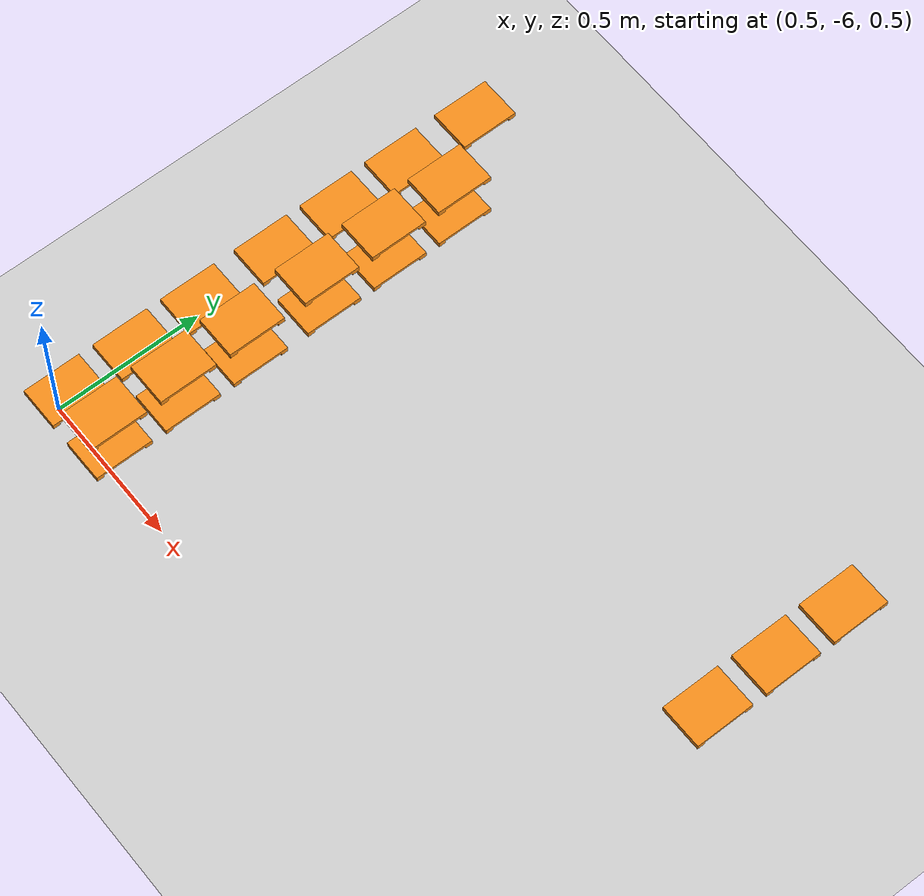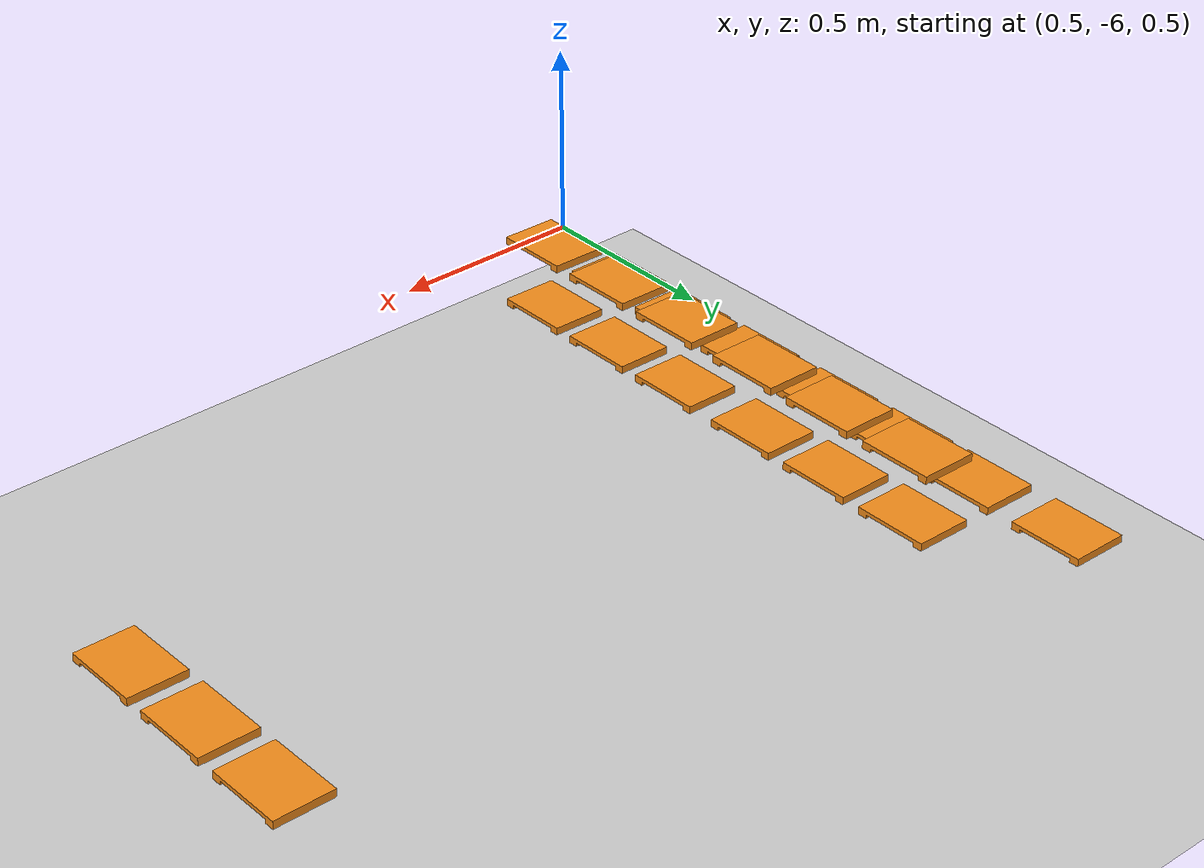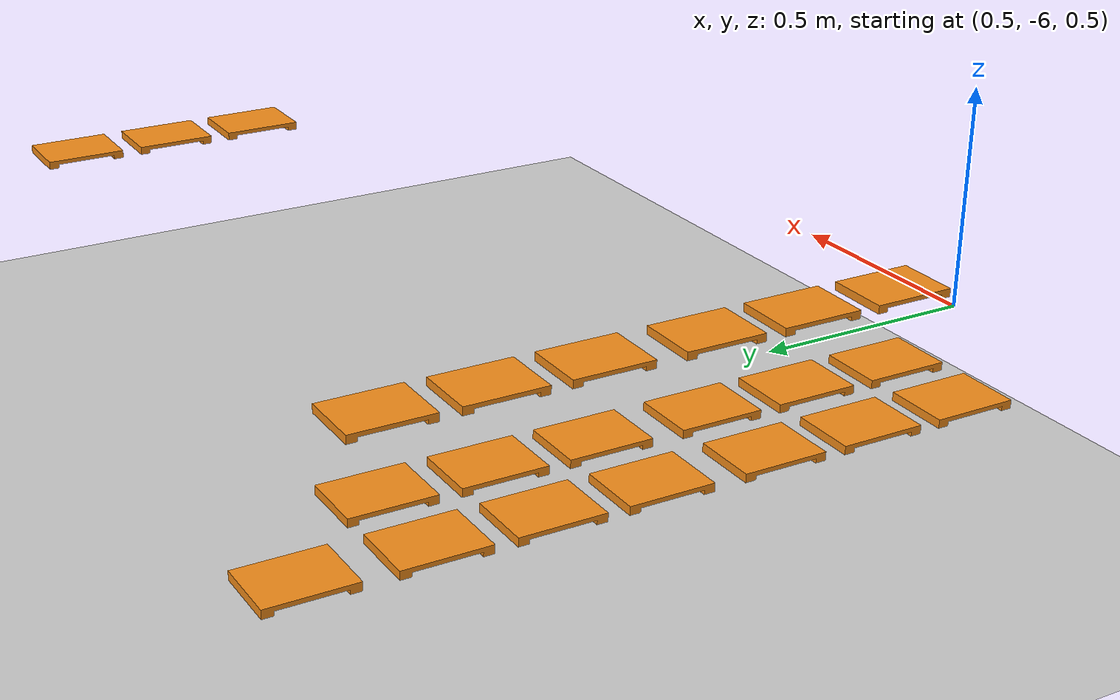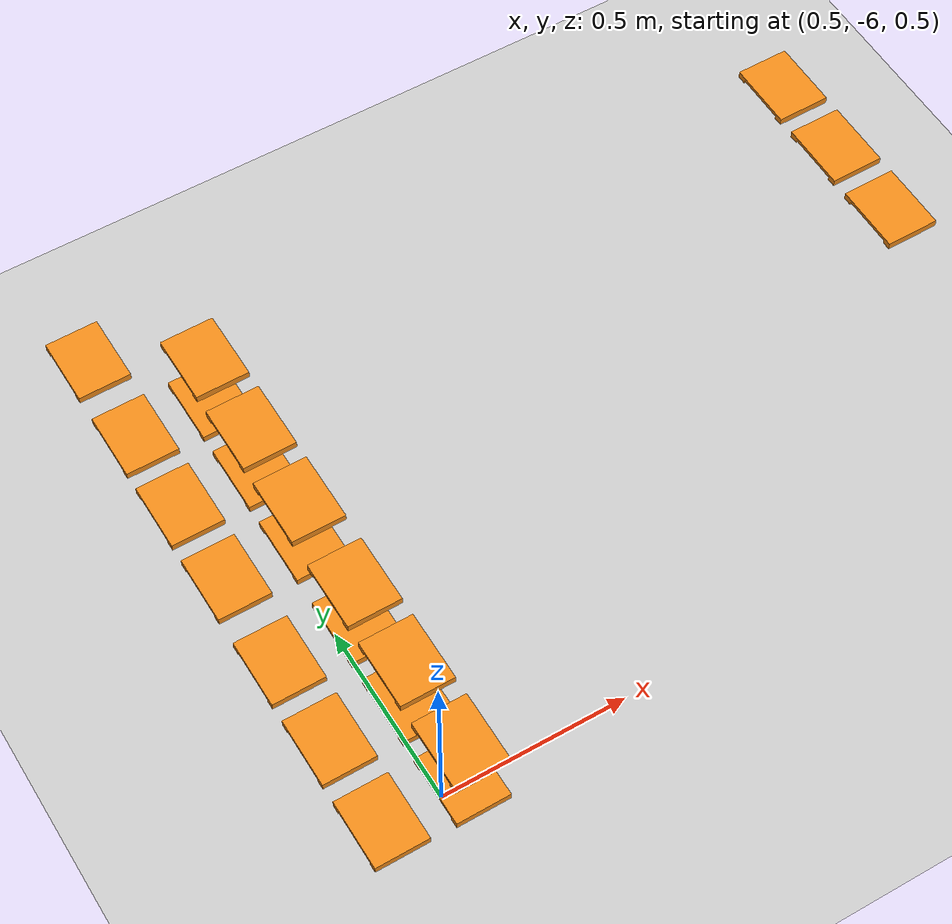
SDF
<sdf version="1.7">
 <world name="default">
  <model name="ground_plane">
   <static>1</static>
   <link name="link">
    <collision name="collision">
     <geometry><plane><normal>0 0 1</normal><size>100 100</size></plane></geometry>
     <surface>
      <contact><collide_bitmask>65535</collide_bitmask></contact>
      <friction><ode><mu>1</mu><mu2>1</mu2></ode></friction>
     </surface>
    </collision>
    <visual name="visual">
     <cast_shadows>0</cast_shadows>
     <geometry><plane><normal>0 0 1</normal><size>100 100</size></plane></geometry>
     <material>
      <script><uri>file://media/materials/scripts/gazebo.material</uri><name>Gazebo/Grey</name></script>
     </material>
    </visual>
   </link>
  </model>
  <model name="pallet_175">
   <pose>0.603691 -4.887 0.511037 2.7e-05 -0.012318 -1.2e-05</pose>
   <link name="link">
    <inertial>
     <pose>0 0 0 0 -0 1.571</pose>
     <inertia>
      <ixx>0.00220983</ixx>
      <ixy>0</ixy>
      <ixz>0</ixz>
      <iyy>0.00128087</iyy>
      <iyz>0</iyz>
      <izz>0.00244903</izz>
     </inertia>
     <mass>0.01</mass>
    </inertial>
    <visual name="visual1">
     <cast_shadows>0</cast_shadows>
     <geometry><mesh><uri>model://pallet/meshes/pallet.stl</uri></mesh></geometry>
     <material>
      <script><uri>file://media/materials/scripts/gazebo.material</uri><name>Gazebo/Orange</name></script>
      <shader type="pixel"><normal_map>__default__</normal_map></shader>
      <emissive>0 0 0 1</emissive>
     </material>
     <pose>0 0 -0 0 -0 1.571</pose>
    </visual>
    <collision name="collision_0">
     <pose>0 0 0 0 -0 1.571</pose>
     <geometry><mesh><uri>model://pallet/meshes/pallet.stl</uri></mesh></geometry>
     <surface>
      <friction>
       <ode><mu>1</mu><mu2>1</mu2><fdir1>0 0 0</fdir1><slip1>0</slip1><slip2>0</slip2></ode>
       <torsional>
        <coefficient>1</coefficient>
        <patch_radius>0</patch_radius>
        <surface_radius>0</surface_radius>
        <use_patch_radius>1</use_patch_radius>
        <ode><slip>0</slip></ode>
       </torsional>
      </friction>
      <bounce><restitution_coefficient>0</restitution_coefficient><threshold>1e+06</threshold></bounce>
      <contact>
       <collide_without_contact>0</collide_without_contact>
       <collide_without_contact_bitmask>1</collide_without_contact_bitmask>
       <collide_bitmask>1</collide_bitmask>
       <ode>
        <soft_cfm>0</soft_cfm>
        <soft_erp>0.2</soft_erp>
        <kp>1e+13</kp>
        <kd>1</kd>
        <max_vel>0.01</max_vel>
        <min_depth>0</min_depth>
       </ode>
       <bullet>
        <split_impulse>1</split_impulse>
        <split_impulse_penetration_threshold>-0.01</split_impulse_penetration_threshold>
        <soft_cfm>0</soft_cfm>
        <soft_erp>0.2</soft_erp>
        <kp>1e+13</kp>
        <kd>1</kd>
       </bullet>
      </contact>
     </surface>
    </collision>
   </link>
   <static>0</static>
  </model>
  <model name="pallet_176">
   <pose>0.603689 -4.637 0.511039 7e-06 -0.012316 1.4e-05</pose>
   <link name="link">
    <inertial>
     <pose>0 0 0 0 -0 1.571</pose>
     <inertia>
      <ixx>0.00220983</ixx>
      <ixy>0</ixy>
      <ixz>0</ixz>
      <iyy>0.00128087</iyy>
      <iyz>0</iyz>
      <izz>0.00244903</izz>
     </inertia>
     <mass>0.01</mass>
    </inertial>
    <visual name="visual1">
     <cast_shadows>0</cast_shadows>
     <geometry><mesh><uri>model://pallet/meshes/pallet.stl</uri></mesh></geometry>
     <material>
      <script><uri>file://media/materials/scripts/gazebo.material</uri><name>Gazebo/Orange</name></script>
      <shader type="pixel"><normal_map>__default__</normal_map></shader>
      <emissive>0 0 0 1</emissive>
     </material>
     <pose>0 0 -0 0 -0 1.571</pose>
    </visual>
    <collision name="collision_0">
     <pose>0 0 0 0 -0 1.571</pose>
     <geometry><mesh><uri>model://pallet/meshes/pallet.stl</uri></mesh></geometry>
     <surface>
      <friction>
       <ode><mu>1</mu><mu2>1</mu2><fdir1>0 0 0</fdir1><slip1>0</slip1><slip2>0</slip2></ode>
       <torsional>
        <coefficient>1</coefficient>
        <patch_radius>0</patch_radius>
        <surface_radius>0</surface_radius>
        <use_patch_radius>1</use_patch_radius>
        <ode><slip>0</slip></ode>
       </torsional>
      </friction>
      <bounce><restitution_coefficient>0</restitution_coefficient><threshold>1e+06</threshold></bounce>
      <contact>
       <collide_without_contact>0</collide_without_contact>
       <collide_without_contact_bitmask>1</collide_without_contact_bitmask>
       <collide_bitmask>1</collide_bitmask>
       <ode>
        <soft_cfm>0</soft_cfm>
        <soft_erp>0.2</soft_erp>
        <kp>1e+13</kp>
        <kd>1</kd>
        <max_vel>0.01</max_vel>
        <min_depth>0</min_depth>
       </ode>
       <bullet>
        <split_impulse>1</split_impulse>
        <split_impulse_penetration_threshold>-0.01</split_impulse_penetration_threshold>
        <soft_cfm>0</soft_cfm>
        <soft_erp>0.2</soft_erp>
        <kp>1e+13</kp>
        <kd>1</kd>
       </bullet>
      </contact>
     </surface>
    </collision>
   </link>
   <static>0</static>
  </model>
  <model name="pallet_177">
   <pose>0.603694 -5.137 0.511037 2.4e-05 -0.012318 3e-06</pose>
   <link name="link">
    <inertial>
     <pose>0 0 0 0 -0 1.571</pose>
     <inertia>
      <ixx>0.00220983</ixx>
      <ixy>0</ixy>
      <ixz>0</ixz>
      <iyy>0.00128087</iyy>
      <iyz>0</iyz>
      <izz>0.00244903</izz>
     </inertia>
     <mass>0.01</mass>
    </inertial>
    <visual name="visual1">
     <cast_shadows>0</cast_shadows>
     <geometry><mesh><uri>model://pallet/meshes/pallet.stl</uri></mesh></geometry>
     <material>
      <script><uri>file://media/materials/scripts/gazebo.material</uri><name>Gazebo/Orange</name></script>
      <shader type="pixel"><normal_map>__default__</normal_map></shader>
      <emissive>0 0 0 1</emissive>
     </material>
     <pose>0 0 -0 0 -0 1.571</pose>
    </visual>
    <collision name="collision_0">
     <pose>0 0 0 0 -0 1.571</pose>
     <geometry><mesh><uri>model://pallet/meshes/pallet.stl</uri></mesh></geometry>
     <surface>
      <friction>
       <ode><mu>1</mu><mu2>1</mu2><fdir1>0 0 0</fdir1><slip1>0</slip1><slip2>0</slip2></ode>
       <torsional>
        <coefficient>1</coefficient>
        <patch_radius>0</patch_radius>
        <surface_radius>0</surface_radius>
        <use_patch_radius>1</use_patch_radius>
        <ode><slip>0</slip></ode>
       </torsional>
      </friction>
      <bounce><restitution_coefficient>0</restitution_coefficient><threshold>1e+06</threshold></bounce>
      <contact>
       <collide_without_contact>0</collide_without_contact>
       <collide_without_contact_bitmask>1</collide_without_contact_bitmask>
       <collide_bitmask>1</collide_bitmask>
       <ode>
        <soft_cfm>0</soft_cfm>
        <soft_erp>0.2</soft_erp>
        <kp>1e+13</kp>
        <kd>1</kd>
        <max_vel>0.01</max_vel>
        <min_depth>0</min_depth>
       </ode>
       <bullet>
        <split_impulse>1</split_impulse>
        <split_impulse_penetration_threshold>-0.01</split_impulse_penetration_threshold>
        <soft_cfm>0</soft_cfm>
        <soft_erp>0.2</soft_erp>
        <kp>1e+13</kp>
        <kd>1</kd>
       </bullet>
      </contact>
     </surface>
    </collision>
   </link>
   <static>0</static>
  </model>
  <model name="pallet_178">
   <pose>0.603698 -5.6625 0.511036 2.3e-05 -0.012318 -1.3e-05</pose>
   <link name="link">
    <inertial>
     <pose>0 0 0 0 -0 1.571</pose>
     <inertia>
      <ixx>0.00220983</ixx>
      <ixy>0</ixy>
      <ixz>0</ixz>
      <iyy>0.00128087</iyy>
      <iyz>0</iyz>
      <izz>0.00244903</izz>
     </inertia>
     <mass>0.01</mass>
    </inertial>
    <visual name="visual1">
     <cast_shadows>0</cast_shadows>
     <geometry><mesh><uri>model://pallet/meshes/pallet.stl</uri></mesh></geometry>
     <material>
      <script><uri>file://media/materials/scripts/gazebo.material</uri><name>Gazebo/Orange</name></script>
      <shader type="pixel"><normal_map>__default__</normal_map></shader>
      <emissive>0 0 0 1</emissive>
     </material>
     <pose>0 0 -0 0 -0 1.571</pose>
    </visual>
    <collision name="collision_0">
     <pose>0 0 0 0 -0 1.571</pose>
     <geometry><mesh><uri>model://pallet/meshes/pallet.stl</uri></mesh></geometry>
     <surface>
      <friction>
       <ode><mu>1</mu><mu2>1</mu2><fdir1>0 0 0</fdir1><slip1>0</slip1><slip2>0</slip2></ode>
       <torsional>
        <coefficient>1</coefficient>
        <patch_radius>0</patch_radius>
        <surface_radius>0</surface_radius>
        <use_patch_radius>1</use_patch_radius>
        <ode><slip>0</slip></ode>
       </torsional>
      </friction>
      <bounce><restitution_coefficient>0</restitution_coefficient><threshold>1e+06</threshold></bounce>
      <contact>
       <collide_without_contact>0</collide_without_contact>
       <collide_without_contact_bitmask>1</collide_without_contact_bitmask>
       <collide_bitmask>1</collide_bitmask>
       <ode>
        <soft_cfm>0</soft_cfm>
        <soft_erp>0.2</soft_erp>
        <kp>1e+13</kp>
        <kd>1</kd>
        <max_vel>0.01</max_vel>
        <min_depth>0</min_depth>
       </ode>
       <bullet>
        <split_impulse>1</split_impulse>
        <split_impulse_penetration_threshold>-0.01</split_impulse_penetration_threshold>
        <soft_cfm>0</soft_cfm>
        <soft_erp>0.2</soft_erp>
        <kp>1e+13</kp>
        <kd>1</kd>
       </bullet>
      </contact>
     </surface>
    </collision>
   </link>
   <static>0</static>
  </model>
  <model name="pallet_179">
   <pose>0.603697 -5.4125 0.511037 1e-05 -0.012318 2.3e-05</pose>
   <link name="link">
    <inertial>
     <pose>0 0 0 0 -0 1.571</pose>
     <inertia>
      <ixx>0.00220983</ixx>
      <ixy>0</ixy>
      <ixz>0</ixz>
      <iyy>0.00128087</iyy>
      <iyz>0</iyz>
      <izz>0.00244903</izz>
     </inertia>
     <mass>0.01</mass>
    </inertial>
    <visual name="visual1">
     <cast_shadows>0</cast_shadows>
     <geometry><mesh><uri>model://pallet/meshes/pallet.stl</uri></mesh></geometry>
     <material>
      <script><uri>file://media/materials/scripts/gazebo.material</uri><name>Gazebo/Orange</name></script>
      <shader type="pixel"><normal_map>__default__</normal_map></shader>
      <emissive>0 0 0 1</emissive>
     </material>
     <pose>0 0 -0 0 -0 1.571</pose>
    </visual>
    <collision name="collision_0">
     <pose>0 0 0 0 -0 1.571</pose>
     <geometry><mesh><uri>model://pallet/meshes/pallet.stl</uri></mesh></geometry>
     <surface>
      <friction>
       <ode><mu>1</mu><mu2>1</mu2><fdir1>0 0 0</fdir1><slip1>0</slip1><slip2>0</slip2></ode>
       <torsional>
        <coefficient>1</coefficient>
        <patch_radius>0</patch_radius>
        <surface_radius>0</surface_radius>
        <use_patch_radius>1</use_patch_radius>
        <ode><slip>0</slip></ode>
       </torsional>
      </friction>
      <bounce><restitution_coefficient>0</restitution_coefficient><threshold>1e+06</threshold></bounce>
      <contact>
       <collide_without_contact>0</collide_without_contact>
       <collide_without_contact_bitmask>1</collide_without_contact_bitmask>
       <collide_bitmask>1</collide_bitmask>
       <ode>
        <soft_cfm>0</soft_cfm>
        <soft_erp>0.2</soft_erp>
        <kp>1e+13</kp>
        <kd>1</kd>
        <max_vel>0.01</max_vel>
        <min_depth>0</min_depth>
       </ode>
       <bullet>
        <split_impulse>1</split_impulse>
        <split_impulse_penetration_threshold>-0.01</split_impulse_penetration_threshold>
        <soft_cfm>0</soft_cfm>
        <soft_erp>0.2</soft_erp>
        <kp>1e+13</kp>
        <kd>1</kd>
       </bullet>
      </contact>
     </surface>
    </collision>
   </link>
   <static>0</static>
  </model>
  <model name="pallet_180">
   <pose>0.603701 -5.9125 0.511037 4e-06 -0.012323 4e-06</pose>
   <link name="link">
    <inertial>
     <pose>0 0 0 0 -0 1.571</pose>
     <inertia>
      <ixx>0.00220983</ixx>
      <ixy>0</ixy>
      <ixz>0</ixz>
      <iyy>0.00128087</iyy>
      <iyz>0</iyz>
      <izz>0.00244903</izz>
     </inertia>
     <mass>0.01</mass>
    </inertial>
    <visual name="visual1">
     <cast_shadows>0</cast_shadows>
     <geometry><mesh><uri>model://pallet/meshes/pallet.stl</uri></mesh></geometry>
     <material>
      <script><uri>file://media/materials/scripts/gazebo.material</uri><name>Gazebo/Orange</name></script>
      <shader type="pixel"><normal_map>__default__</normal_map></shader>
      <emissive>0 0 0 1</emissive>
     </material>
     <pose>0 0 -0 0 -0 1.571</pose>
    </visual>
    <collision name="collision_0">
     <pose>0 0 0 0 -0 1.571</pose>
     <geometry><mesh><uri>model://pallet/meshes/pallet.stl</uri></mesh></geometry>
     <surface>
      <friction>
       <ode><mu>1</mu><mu2>1</mu2><fdir1>0 0 0</fdir1><slip1>0</slip1><slip2>0</slip2></ode>
       <torsional>
        <coefficient>1</coefficient>
        <patch_radius>0</patch_radius>
        <surface_radius>0</surface_radius>
        <use_patch_radius>1</use_patch_radius>
        <ode><slip>0</slip></ode>
       </torsional>
      </friction>
      <bounce><restitution_coefficient>0</restitution_coefficient><threshold>1e+06</threshold></bounce>
      <contact>
       <collide_without_contact>0</collide_without_contact>
       <collide_without_contact_bitmask>1</collide_without_contact_bitmask>
       <collide_bitmask>1</collide_bitmask>
       <ode>
        <soft_cfm>0</soft_cfm>
        <soft_erp>0.2</soft_erp>
        <kp>1e+13</kp>
        <kd>1</kd>
        <max_vel>0.01</max_vel>
        <min_depth>0</min_depth>
       </ode>
       <bullet>
        <split_impulse>1</split_impulse>
        <split_impulse_penetration_threshold>-0.01</split_impulse_penetration_threshold>
        <soft_cfm>0</soft_cfm>
        <soft_erp>0.2</soft_erp>
        <kp>1e+13</kp>
        <kd>1</kd>
       </bullet>
      </contact>
     </surface>
    </collision>
   </link>
   <static>0</static>
  </model>
  <model name="pallet_198">
   <pose>0.385751 -4.3625 0.33101 2.9e-05 -0.012781 8e-06</pose>
   <link name="link">
    <inertial>
     <pose>0 0 0 0 -0 1.571</pose>
     <inertia>
      <ixx>0.00220983</ixx>
      <ixy>0</ixy>
      <ixz>0</ixz>
      <iyy>0.00128087</iyy>
      <iyz>0</iyz>
      <izz>0.00244903</izz>
     </inertia>
     <mass>0.01</mass>
    </inertial>
    <visual name="visual1">
     <cast_shadows>0</cast_shadows>
     <geometry><mesh><uri>model://pallet/meshes/pallet.stl</uri></mesh></geometry>
     <material>
      <script><uri>file://media/materials/scripts/gazebo.material</uri><name>Gazebo/Orange</name></script>
      <shader type="pixel"><normal_map>__default__</normal_map></shader>
      <emissive>0 0 0 1</emissive>
     </material>
     <pose>0 0 -0 0 -0 1.571</pose>
    </visual>
    <collision name="collision_0">
     <pose>0 0 0 0 -0 1.571</pose>
     <geometry><mesh><uri>model://pallet/meshes/pallet.stl</uri></mesh></geometry>
     <surface>
      <friction>
       <ode><mu>1</mu><mu2>1</mu2><fdir1>0 0 0</fdir1><slip1>0</slip1><slip2>0</slip2></ode>
       <torsional>
        <coefficient>1</coefficient>
        <patch_radius>0</patch_radius>
        <surface_radius>0</surface_radius>
        <use_patch_radius>1</use_patch_radius>
        <ode><slip>0</slip></ode>
       </torsional>
      </friction>
      <bounce><restitution_coefficient>0</restitution_coefficient><threshold>1e+06</threshold></bounce>
      <contact>
       <collide_without_contact>0</collide_without_contact>
       <collide_without_contact_bitmask>1</collide_without_contact_bitmask>
       <collide_bitmask>1</collide_bitmask>
       <ode>
        <soft_cfm>0</soft_cfm>
        <soft_erp>0.2</soft_erp>
        <kp>1e+13</kp>
        <kd>1</kd>
        <max_vel>0.01</max_vel>
        <min_depth>0</min_depth>
       </ode>
       <bullet>
        <split_impulse>1</split_impulse>
        <split_impulse_penetration_threshold>-0.01</split_impulse_penetration_threshold>
        <soft_cfm>0</soft_cfm>
        <soft_erp>0.2</soft_erp>
        <kp>1e+13</kp>
        <kd>1</kd>
       </bullet>
      </contact>
     </surface>
    </collision>
   </link>
   <static>0</static>
  </model>
  <model name="pallet_199">
   <pose>0.385755 -4.887 0.331009 3.3e-05 -0.012783 1e-06</pose>
   <link name="link">
    <inertial>
     <pose>0 0 0 0 -0 1.571</pose>
     <inertia>
      <ixx>0.00220983</ixx>
      <ixy>0</ixy>
      <ixz>0</ixz>
      <iyy>0.00128087</iyy>
      <iyz>0</iyz>
      <izz>0.00244903</izz>
     </inertia>
     <mass>0.01</mass>
    </inertial>
    <visual name="visual1">
     <cast_shadows>0</cast_shadows>
     <geometry><mesh><uri>model://pallet/meshes/pallet.stl</uri></mesh></geometry>
     <material>
      <script><uri>file://media/materials/scripts/gazebo.material</uri><name>Gazebo/Orange</name></script>
      <shader type="pixel"><normal_map>__default__</normal_map></shader>
      <emissive>0 0 0 1</emissive>
     </material>
     <pose>0 0 -0 0 -0 1.571</pose>
    </visual>
    <collision name="collision_0">
     <pose>0 0 0 0 -0 1.571</pose>
     <geometry><mesh><uri>model://pallet/meshes/pallet.stl</uri></mesh></geometry>
     <surface>
      <friction>
       <ode><mu>1</mu><mu2>1</mu2><fdir1>0 0 0</fdir1><slip1>0</slip1><slip2>0</slip2></ode>
       <torsional>
        <coefficient>1</coefficient>
        <patch_radius>0</patch_radius>
        <surface_radius>0</surface_radius>
        <use_patch_radius>1</use_patch_radius>
        <ode><slip>0</slip></ode>
       </torsional>
      </friction>
      <bounce><restitution_coefficient>0</restitution_coefficient><threshold>1e+06</threshold></bounce>
      <contact>
       <collide_without_contact>0</collide_without_contact>
       <collide_without_contact_bitmask>1</collide_without_contact_bitmask>
       <collide_bitmask>1</collide_bitmask>
       <ode>
        <soft_cfm>0</soft_cfm>
        <soft_erp>0.2</soft_erp>
        <kp>1e+13</kp>
        <kd>1</kd>
        <max_vel>0.01</max_vel>
        <min_depth>0</min_depth>
       </ode>
       <bullet>
        <split_impulse>1</split_impulse>
        <split_impulse_penetration_threshold>-0.01</split_impulse_penetration_threshold>
        <soft_cfm>0</soft_cfm>
        <soft_erp>0.2</soft_erp>
        <kp>1e+13</kp>
        <kd>1</kd>
       </bullet>
      </contact>
     </surface>
    </collision>
   </link>
   <static>0</static>
  </model>
  <model name="pallet_200">
   <pose>0.385753 -4.637 0.331009 3.1e-05 -0.012783 7e-06</pose>
   <link name="link">
    <inertial>
     <pose>0 0 0 0 -0 1.571</pose>
     <inertia>
      <ixx>0.00220983</ixx>
      <ixy>0</ixy>
      <ixz>0</ixz>
      <iyy>0.00128087</iyy>
      <iyz>0</iyz>
      <izz>0.00244903</izz>
     </inertia>
     <mass>0.01</mass>
    </inertial>
    <visual name="visual1">
     <cast_shadows>0</cast_shadows>
     <geometry><mesh><uri>model://pallet/meshes/pallet.stl</uri></mesh></geometry>
     <material>
      <script><uri>file://media/materials/scripts/gazebo.material</uri><name>Gazebo/Orange</name></script>
      <shader type="pixel"><normal_map>__default__</normal_map></shader>
      <emissive>0 0 0 1</emissive>
     </material>
     <pose>0 0 -0 0 -0 1.571</pose>
    </visual>
    <collision name="collision_0">
     <pose>0 0 0 0 -0 1.571</pose>
     <geometry><mesh><uri>model://pallet/meshes/pallet.stl</uri></mesh></geometry>
     <surface>
      <friction>
       <ode><mu>1</mu><mu2>1</mu2><fdir1>0 0 0</fdir1><slip1>0</slip1><slip2>0</slip2></ode>
       <torsional>
        <coefficient>1</coefficient>
        <patch_radius>0</patch_radius>
        <surface_radius>0</surface_radius>
        <use_patch_radius>1</use_patch_radius>
        <ode><slip>0</slip></ode>
       </torsional>
      </friction>
      <bounce><restitution_coefficient>0</restitution_coefficient><threshold>1e+06</threshold></bounce>
      <contact>
       <collide_without_contact>0</collide_without_contact>
       <collide_without_contact_bitmask>1</collide_without_contact_bitmask>
       <collide_bitmask>1</collide_bitmask>
       <ode>
        <soft_cfm>0</soft_cfm>
        <soft_erp>0.2</soft_erp>
        <kp>1e+13</kp>
        <kd>1</kd>
        <max_vel>0.01</max_vel>
        <min_depth>0</min_depth>
       </ode>
       <bullet>
        <split_impulse>1</split_impulse>
        <split_impulse_penetration_threshold>-0.01</split_impulse_penetration_threshold>
        <soft_cfm>0</soft_cfm>
        <soft_erp>0.2</soft_erp>
        <kp>1e+13</kp>
        <kd>1</kd>
       </bullet>
      </contact>
     </surface>
    </collision>
   </link>
   <static>0</static>
  </model>
  <model name="pallet_201">
   <pose>0.385758 -5.137 0.331009 1.9e-05 -0.012784 9e-06</pose>
   <link name="link">
    <inertial>
     <pose>0 0 0 0 -0 1.571</pose>
     <inertia>
      <ixx>0.00220983</ixx>
      <ixy>0</ixy>
      <ixz>0</ixz>
      <iyy>0.00128087</iyy>
      <iyz>0</iyz>
      <izz>0.00244903</izz>
     </inertia>
     <mass>0.01</mass>
    </inertial>
    <visual name="visual1">
     <cast_shadows>0</cast_shadows>
     <geometry><mesh><uri>model://pallet/meshes/pallet.stl</uri></mesh></geometry>
     <material>
      <script><uri>file://media/materials/scripts/gazebo.material</uri><name>Gazebo/Orange</name></script>
      <shader type="pixel"><normal_map>__default__</normal_map></shader>
      <emissive>0 0 0 1</emissive>
     </material>
     <pose>0 0 -0 0 -0 1.571</pose>
    </visual>
    <collision name="collision_0">
     <pose>0 0 0 0 -0 1.571</pose>
     <geometry><mesh><uri>model://pallet/meshes/pallet.stl</uri></mesh></geometry>
     <surface>
      <friction>
       <ode><mu>1</mu><mu2>1</mu2><fdir1>0 0 0</fdir1><slip1>0</slip1><slip2>0</slip2></ode>
       <torsional>
        <coefficient>1</coefficient>
        <patch_radius>0</patch_radius>
        <surface_radius>0</surface_radius>
        <use_patch_radius>1</use_patch_radius>
        <ode><slip>0</slip></ode>
       </torsional>
      </friction>
      <bounce><restitution_coefficient>0</restitution_coefficient><threshold>1e+06</threshold></bounce>
      <contact>
       <collide_without_contact>0</collide_without_contact>
       <collide_without_contact_bitmask>1</collide_without_contact_bitmask>
       <collide_bitmask>1</collide_bitmask>
       <ode>
        <soft_cfm>0</soft_cfm>
        <soft_erp>0.2</soft_erp>
        <kp>1e+13</kp>
        <kd>1</kd>
        <max_vel>0.01</max_vel>
        <min_depth>0</min_depth>
       </ode>
       <bullet>
        <split_impulse>1</split_impulse>
        <split_impulse_penetration_threshold>-0.01</split_impulse_penetration_threshold>
        <soft_cfm>0</soft_cfm>
        <soft_erp>0.2</soft_erp>
        <kp>1e+13</kp>
        <kd>1</kd>
       </bullet>
      </contact>
     </surface>
    </collision>
   </link>
   <static>0</static>
  </model>
  <model name="pallet_202">
   <pose>0.385762 -5.6625 0.331007 2.8e-05 -0.012785 4e-06</pose>
   <link name="link">
    <inertial>
     <pose>0 0 0 0 -0 1.571</pose>
     <inertia>
      <ixx>0.00220983</ixx>
      <ixy>0</ixy>
      <ixz>0</ixz>
      <iyy>0.00128087</iyy>
      <iyz>0</iyz>
      <izz>0.00244903</izz>
     </inertia>
     <mass>0.01</mass>
    </inertial>
    <visual name="visual1">
     <cast_shadows>0</cast_shadows>
     <geometry><mesh><uri>model://pallet/meshes/pallet.stl</uri></mesh></geometry>
     <material>
      <script><uri>file://media/materials/scripts/gazebo.material</uri><name>Gazebo/Orange</name></script>
      <shader type="pixel"><normal_map>__default__</normal_map></shader>
      <emissive>0 0 0 1</emissive>
     </material>
     <pose>0 0 -0 0 -0 1.571</pose>
    </visual>
    <collision name="collision_0">
     <pose>0 0 0 0 -0 1.571</pose>
     <geometry><mesh><uri>model://pallet/meshes/pallet.stl</uri></mesh></geometry>
     <surface>
      <friction>
       <ode><mu>1</mu><mu2>1</mu2><fdir1>0 0 0</fdir1><slip1>0</slip1><slip2>0</slip2></ode>
       <torsional>
        <coefficient>1</coefficient>
        <patch_radius>0</patch_radius>
        <surface_radius>0</surface_radius>
        <use_patch_radius>1</use_patch_radius>
        <ode><slip>0</slip></ode>
       </torsional>
      </friction>
      <bounce><restitution_coefficient>0</restitution_coefficient><threshold>1e+06</threshold></bounce>
      <contact>
       <collide_without_contact>0</collide_without_contact>
       <collide_without_contact_bitmask>1</collide_without_contact_bitmask>
       <collide_bitmask>1</collide_bitmask>
       <ode>
        <soft_cfm>0</soft_cfm>
        <soft_erp>0.2</soft_erp>
        <kp>1e+13</kp>
        <kd>1</kd>
        <max_vel>0.01</max_vel>
        <min_depth>0</min_depth>
       </ode>
       <bullet>
        <split_impulse>1</split_impulse>
        <split_impulse_penetration_threshold>-0.01</split_impulse_penetration_threshold>
        <soft_cfm>0</soft_cfm>
        <soft_erp>0.2</soft_erp>
        <kp>1e+13</kp>
        <kd>1</kd>
       </bullet>
      </contact>
     </surface>
    </collision>
   </link>
   <static>0</static>
  </model>
  <model name="pallet_203">
   <pose>0.38576 -5.4125 0.331008 2.9e-05 -0.012783 9e-06</pose>
   <link name="link">
    <inertial>
     <pose>0 0 0 0 -0 1.571</pose>
     <inertia>
      <ixx>0.00220983</ixx>
      <ixy>0</ixy>
      <ixz>0</ixz>
      <iyy>0.00128087</iyy>
      <iyz>0</iyz>
      <izz>0.00244903</izz>
     </inertia>
     <mass>0.01</mass>
    </inertial>
    <visual name="visual1">
     <cast_shadows>0</cast_shadows>
     <geometry><mesh><uri>model://pallet/meshes/pallet.stl</uri></mesh></geometry>
     <material>
      <script><uri>file://media/materials/scripts/gazebo.material</uri><name>Gazebo/Orange</name></script>
      <shader type="pixel"><normal_map>__default__</normal_map></shader>
      <emissive>0 0 0 1</emissive>
     </material>
     <pose>0 0 -0 0 -0 1.571</pose>
    </visual>
    <collision name="collision_0">
     <pose>0 0 0 0 -0 1.571</pose>
     <geometry><mesh><uri>model://pallet/meshes/pallet.stl</uri></mesh></geometry>
     <surface>
      <friction>
       <ode><mu>1</mu><mu2>1</mu2><fdir1>0 0 0</fdir1><slip1>0</slip1><slip2>0</slip2></ode>
       <torsional>
        <coefficient>1</coefficient>
        <patch_radius>0</patch_radius>
        <surface_radius>0</surface_radius>
        <use_patch_radius>1</use_patch_radius>
        <ode><slip>0</slip></ode>
       </torsional>
      </friction>
      <bounce><restitution_coefficient>0</restitution_coefficient><threshold>1e+06</threshold></bounce>
      <contact>
       <collide_without_contact>0</collide_without_contact>
       <collide_without_contact_bitmask>1</collide_without_contact_bitmask>
       <collide_bitmask>1</collide_bitmask>
       <ode>
        <soft_cfm>0</soft_cfm>
        <soft_erp>0.2</soft_erp>
        <kp>1e+13</kp>
        <kd>1</kd>
        <max_vel>0.01</max_vel>
        <min_depth>0</min_depth>
       </ode>
       <bullet>
        <split_impulse>1</split_impulse>
        <split_impulse_penetration_threshold>-0.01</split_impulse_penetration_threshold>
        <soft_cfm>0</soft_cfm>
        <soft_erp>0.2</soft_erp>
        <kp>1e+13</kp>
        <kd>1</kd>
       </bullet>
      </contact>
     </surface>
    </collision>
   </link>
   <static>0</static>
  </model>
  <model name="pallet_204">
   <pose>0.385765 -5.9125 0.331006 3.3e-05 -0.012785 1.1e-05</pose>
   <link name="link">
    <inertial>
     <pose>0 0 0 0 -0 1.571</pose>
     <inertia>
      <ixx>0.00220983</ixx>
      <ixy>0</ixy>
      <ixz>0</ixz>
      <iyy>0.00128087</iyy>
      <iyz>0</iyz>
      <izz>0.00244903</izz>
     </inertia>
     <mass>0.01</mass>
    </inertial>
    <visual name="visual1">
     <cast_shadows>0</cast_shadows>
     <geometry><mesh><uri>model://pallet/meshes/pallet.stl</uri></mesh></geometry>
     <material>
      <script><uri>file://media/materials/scripts/gazebo.material</uri><name>Gazebo/Orange</name></script>
      <shader type="pixel"><normal_map>__default__</normal_map></shader>
      <emissive>0 0 0 1</emissive>
     </material>
     <pose>0 0 -0 0 -0 1.571</pose>
    </visual>
    <collision name="collision_0">
     <pose>0 0 0 0 -0 1.571</pose>
     <geometry><mesh><uri>model://pallet/meshes/pallet.stl</uri></mesh></geometry>
     <surface>
      <friction>
       <ode><mu>1</mu><mu2>1</mu2><fdir1>0 0 0</fdir1><slip1>0</slip1><slip2>0</slip2></ode>
       <torsional>
        <coefficient>1</coefficient>
        <patch_radius>0</patch_radius>
        <surface_radius>0</surface_radius>
        <use_patch_radius>1</use_patch_radius>
        <ode><slip>0</slip></ode>
       </torsional>
      </friction>
      <bounce><restitution_coefficient>0</restitution_coefficient><threshold>1e+06</threshold></bounce>
      <contact>
       <collide_without_contact>0</collide_without_contact>
       <collide_without_contact_bitmask>1</collide_without_contact_bitmask>
       <collide_bitmask>1</collide_bitmask>
       <ode>
        <soft_cfm>0</soft_cfm>
        <soft_erp>0.2</soft_erp>
        <kp>1e+13</kp>
        <kd>1</kd>
        <max_vel>0.01</max_vel>
        <min_depth>0</min_depth>
       </ode>
       <bullet>
        <split_impulse>1</split_impulse>
        <split_impulse_penetration_threshold>-0.01</split_impulse_penetration_threshold>
        <soft_cfm>0</soft_cfm>
        <soft_erp>0.2</soft_erp>
        <kp>1e+13</kp>
        <kd>1</kd>
       </bullet>
      </contact>
     </surface>
    </collision>
   </link>
   <static>0</static>
  </model>
  <model name="pallet_211">
   <pose>0.605909 -4.887 0.331051 2.6e-05 -0.012317 4e-06</pose>
   <link name="link">
    <inertial>
     <pose>0 0 0 0 -0 1.571</pose>
     <inertia>
      <ixx>0.00220983</ixx>
      <ixy>0</ixy>
      <ixz>0</ixz>
      <iyy>0.00128087</iyy>
      <iyz>0</iyz>
      <izz>0.00244903</izz>
     </inertia>
     <mass>0.01</mass>
    </inertial>
    <visual name="visual1">
     <cast_shadows>0</cast_shadows>
     <geometry><mesh><uri>model://pallet/meshes/pallet.stl</uri></mesh></geometry>
     <material>
      <script><uri>file://media/materials/scripts/gazebo.material</uri><name>Gazebo/Orange</name></script>
      <shader type="pixel"><normal_map>__default__</normal_map></shader>
      <emissive>0 0 0 1</emissive>
     </material>
     <pose>0 0 -0 0 -0 1.571</pose>
    </visual>
    <collision name="collision_0">
     <pose>0 0 0 0 -0 1.571</pose>
     <geometry><mesh><uri>model://pallet/meshes/pallet.stl</uri></mesh></geometry>
     <surface>
      <friction>
       <ode><mu>1</mu><mu2>1</mu2><fdir1>0 0 0</fdir1><slip1>0</slip1><slip2>0</slip2></ode>
       <torsional>
        <coefficient>1</coefficient>
        <patch_radius>0</patch_radius>
        <surface_radius>0</surface_radius>
        <use_patch_radius>1</use_patch_radius>
        <ode><slip>0</slip></ode>
       </torsional>
      </friction>
      <bounce><restitution_coefficient>0</restitution_coefficient><threshold>1e+06</threshold></bounce>
      <contact>
       <collide_without_contact>0</collide_without_contact>
       <collide_without_contact_bitmask>1</collide_without_contact_bitmask>
       <collide_bitmask>1</collide_bitmask>
       <ode>
        <soft_cfm>0</soft_cfm>
        <soft_erp>0.2</soft_erp>
        <kp>1e+13</kp>
        <kd>1</kd>
        <max_vel>0.01</max_vel>
        <min_depth>0</min_depth>
       </ode>
       <bullet>
        <split_impulse>1</split_impulse>
        <split_impulse_penetration_threshold>-0.01</split_impulse_penetration_threshold>
        <soft_cfm>0</soft_cfm>
        <soft_erp>0.2</soft_erp>
        <kp>1e+13</kp>
        <kd>1</kd>
       </bullet>
      </contact>
     </surface>
    </collision>
   </link>
   <static>0</static>
  </model>
  <model name="pallet_212">
   <pose>0.605907 -4.637 0.331051 1.9e-05 -0.012316 8e-06</pose>
   <link name="link">
    <inertial>
     <pose>0 0 0 0 -0 1.571</pose>
     <inertia>
      <ixx>0.00220983</ixx>
      <ixy>0</ixy>
      <ixz>0</ixz>
      <iyy>0.00128087</iyy>
      <iyz>0</iyz>
      <izz>0.00244903</izz>
     </inertia>
     <mass>0.01</mass>
    </inertial>
    <visual name="visual1">
     <cast_shadows>0</cast_shadows>
     <geometry><mesh><uri>model://pallet/meshes/pallet.stl</uri></mesh></geometry>
     <material>
      <script><uri>file://media/materials/scripts/gazebo.material</uri><name>Gazebo/Orange</name></script>
      <shader type="pixel"><normal_map>__default__</normal_map></shader>
      <emissive>0 0 0 1</emissive>
     </material>
     <pose>0 0 -0 0 -0 1.571</pose>
    </visual>
    <collision name="collision_0">
     <pose>0 0 0 0 -0 1.571</pose>
     <geometry><mesh><uri>model://pallet/meshes/pallet.stl</uri></mesh></geometry>
     <surface>
      <friction>
       <ode><mu>1</mu><mu2>1</mu2><fdir1>0 0 0</fdir1><slip1>0</slip1><slip2>0</slip2></ode>
       <torsional>
        <coefficient>1</coefficient>
        <patch_radius>0</patch_radius>
        <surface_radius>0</surface_radius>
        <use_patch_radius>1</use_patch_radius>
        <ode><slip>0</slip></ode>
       </torsional>
      </friction>
      <bounce><restitution_coefficient>0</restitution_coefficient><threshold>1e+06</threshold></bounce>
      <contact>
       <collide_without_contact>0</collide_without_contact>
       <collide_without_contact_bitmask>1</collide_without_contact_bitmask>
       <collide_bitmask>1</collide_bitmask>
       <ode>
        <soft_cfm>0</soft_cfm>
        <soft_erp>0.2</soft_erp>
        <kp>1e+13</kp>
        <kd>1</kd>
        <max_vel>0.01</max_vel>
        <min_depth>0</min_depth>
       </ode>
       <bullet>
        <split_impulse>1</split_impulse>
        <split_impulse_penetration_threshold>-0.01</split_impulse_penetration_threshold>
        <soft_cfm>0</soft_cfm>
        <soft_erp>0.2</soft_erp>
        <kp>1e+13</kp>
        <kd>1</kd>
       </bullet>
      </contact>
     </surface>
    </collision>
   </link>
   <static>0</static>
  </model>
  <model name="pallet_213">
   <pose>0.605912 -5.137 0.331051 2.4e-05 -0.012319 8e-06</pose>
   <link name="link">
    <inertial>
     <pose>0 0 0 0 -0 1.571</pose>
     <inertia>
      <ixx>0.00220983</ixx>
      <ixy>0</ixy>
      <ixz>0</ixz>
      <iyy>0.00128087</iyy>
      <iyz>0</iyz>
      <izz>0.00244903</izz>
     </inertia>
     <mass>0.01</mass>
    </inertial>
    <visual name="visual1">
     <cast_shadows>0</cast_shadows>
     <geometry><mesh><uri>model://pallet/meshes/pallet.stl</uri></mesh></geometry>
     <material>
      <script><uri>file://media/materials/scripts/gazebo.material</uri><name>Gazebo/Orange</name></script>
      <shader type="pixel"><normal_map>__default__</normal_map></shader>
      <emissive>0 0 0 1</emissive>
     </material>
     <pose>0 0 -0 0 -0 1.571</pose>
    </visual>
    <collision name="collision_0">
     <pose>0 0 0 0 -0 1.571</pose>
     <geometry><mesh><uri>model://pallet/meshes/pallet.stl</uri></mesh></geometry>
     <surface>
      <friction>
       <ode><mu>1</mu><mu2>1</mu2><fdir1>0 0 0</fdir1><slip1>0</slip1><slip2>0</slip2></ode>
       <torsional>
        <coefficient>1</coefficient>
        <patch_radius>0</patch_radius>
        <surface_radius>0</surface_radius>
        <use_patch_radius>1</use_patch_radius>
        <ode><slip>0</slip></ode>
       </torsional>
      </friction>
      <bounce><restitution_coefficient>0</restitution_coefficient><threshold>1e+06</threshold></bounce>
      <contact>
       <collide_without_contact>0</collide_without_contact>
       <collide_without_contact_bitmask>1</collide_without_contact_bitmask>
       <collide_bitmask>1</collide_bitmask>
       <ode>
        <soft_cfm>0</soft_cfm>
        <soft_erp>0.2</soft_erp>
        <kp>1e+13</kp>
        <kd>1</kd>
        <max_vel>0.01</max_vel>
        <min_depth>0</min_depth>
       </ode>
       <bullet>
        <split_impulse>1</split_impulse>
        <split_impulse_penetration_threshold>-0.01</split_impulse_penetration_threshold>
        <soft_cfm>0</soft_cfm>
        <soft_erp>0.2</soft_erp>
        <kp>1e+13</kp>
        <kd>1</kd>
       </bullet>
      </contact>
     </surface>
    </collision>
   </link>
   <static>0</static>
  </model>
  <model name="pallet_214">
   <pose>0.605916 -5.6625 0.331049 2.3e-05 -0.012317 4e-06</pose>
   <link name="link">
    <inertial>
     <pose>0 0 0 0 -0 1.571</pose>
     <inertia>
      <ixx>0.00220983</ixx>
      <ixy>0</ixy>
      <ixz>0</ixz>
      <iyy>0.00128087</iyy>
      <iyz>0</iyz>
      <izz>0.00244903</izz>
     </inertia>
     <mass>0.01</mass>
    </inertial>
    <visual name="visual1">
     <cast_shadows>0</cast_shadows>
     <geometry><mesh><uri>model://pallet/meshes/pallet.stl</uri></mesh></geometry>
     <material>
      <script><uri>file://media/materials/scripts/gazebo.material</uri><name>Gazebo/Orange</name></script>
      <shader type="pixel"><normal_map>__default__</normal_map></shader>
      <emissive>0 0 0 1</emissive>
     </material>
     <pose>0 0 -0 0 -0 1.571</pose>
    </visual>
    <collision name="collision_0">
     <pose>0 0 0 0 -0 1.571</pose>
     <geometry><mesh><uri>model://pallet/meshes/pallet.stl</uri></mesh></geometry>
     <surface>
      <friction>
       <ode><mu>1</mu><mu2>1</mu2><fdir1>0 0 0</fdir1><slip1>0</slip1><slip2>0</slip2></ode>
       <torsional>
        <coefficient>1</coefficient>
        <patch_radius>0</patch_radius>
        <surface_radius>0</surface_radius>
        <use_patch_radius>1</use_patch_radius>
        <ode><slip>0</slip></ode>
       </torsional>
      </friction>
      <bounce><restitution_coefficient>0</restitution_coefficient><threshold>1e+06</threshold></bounce>
      <contact>
       <collide_without_contact>0</collide_without_contact>
       <collide_without_contact_bitmask>1</collide_without_contact_bitmask>
       <collide_bitmask>1</collide_bitmask>
       <ode>
        <soft_cfm>0</soft_cfm>
        <soft_erp>0.2</soft_erp>
        <kp>1e+13</kp>
        <kd>1</kd>
        <max_vel>0.01</max_vel>
        <min_depth>0</min_depth>
       </ode>
       <bullet>
        <split_impulse>1</split_impulse>
        <split_impulse_penetration_threshold>-0.01</split_impulse_penetration_threshold>
        <soft_cfm>0</soft_cfm>
        <soft_erp>0.2</soft_erp>
        <kp>1e+13</kp>
        <kd>1</kd>
       </bullet>
      </contact>
     </surface>
    </collision>
   </link>
   <static>0</static>
  </model>
  <model name="pallet_215">
   <pose>0.605914 -5.4125 0.33105 2.3e-05 -0.012316 1e-05</pose>
   <link name="link">
    <inertial>
     <pose>0 0 0 0 -0 1.571</pose>
     <inertia>
      <ixx>0.00220983</ixx>
      <ixy>0</ixy>
      <ixz>0</ixz>
      <iyy>0.00128087</iyy>
      <iyz>0</iyz>
      <izz>0.00244903</izz>
     </inertia>
     <mass>0.01</mass>
    </inertial>
    <visual name="visual1">
     <cast_shadows>0</cast_shadows>
     <geometry><mesh><uri>model://pallet/meshes/pallet.stl</uri></mesh></geometry>
     <material>
      <script><uri>file://media/materials/scripts/gazebo.material</uri><name>Gazebo/Orange</name></script>
      <shader type="pixel"><normal_map>__default__</normal_map></shader>
      <emissive>0 0 0 1</emissive>
     </material>
     <pose>0 0 -0 0 -0 1.571</pose>
    </visual>
    <collision name="collision_0">
     <pose>0 0 0 0 -0 1.571</pose>
     <geometry><mesh><uri>model://pallet/meshes/pallet.stl</uri></mesh></geometry>
     <surface>
      <friction>
       <ode><mu>1</mu><mu2>1</mu2><fdir1>0 0 0</fdir1><slip1>0</slip1><slip2>0</slip2></ode>
       <torsional>
        <coefficient>1</coefficient>
        <patch_radius>0</patch_radius>
        <surface_radius>0</surface_radius>
        <use_patch_radius>1</use_patch_radius>
        <ode><slip>0</slip></ode>
       </torsional>
      </friction>
      <bounce><restitution_coefficient>0</restitution_coefficient><threshold>1e+06</threshold></bounce>
      <contact>
       <collide_without_contact>0</collide_without_contact>
       <collide_without_contact_bitmask>1</collide_without_contact_bitmask>
       <collide_bitmask>1</collide_bitmask>
       <ode>
        <soft_cfm>0</soft_cfm>
        <soft_erp>0.2</soft_erp>
        <kp>1e+13</kp>
        <kd>1</kd>
        <max_vel>0.01</max_vel>
        <min_depth>0</min_depth>
       </ode>
       <bullet>
        <split_impulse>1</split_impulse>
        <split_impulse_penetration_threshold>-0.01</split_impulse_penetration_threshold>
        <soft_cfm>0</soft_cfm>
        <soft_erp>0.2</soft_erp>
        <kp>1e+13</kp>
        <kd>1</kd>
       </bullet>
      </contact>
     </surface>
    </collision>
   </link>
   <static>0</static>
  </model>
  <model name="pallet_216">
   <pose>0.605919 -5.9125 0.331049 1.9e-05 -0.01232 1.2e-05</pose>
   <link name="link">
    <inertial>
     <pose>0 0 0 0 -0 1.571</pose>
     <inertia>
      <ixx>0.00220983</ixx>
      <ixy>0</ixy>
      <ixz>0</ixz>
      <iyy>0.00128087</iyy>
      <iyz>0</iyz>
      <izz>0.00244903</izz>
     </inertia>
     <mass>0.01</mass>
    </inertial>
    <visual name="visual1">
     <cast_shadows>0</cast_shadows>
     <geometry><mesh><uri>model://pallet/meshes/pallet.stl</uri></mesh></geometry>
     <material>
      <script><uri>file://media/materials/scripts/gazebo.material</uri><name>Gazebo/Orange</name></script>
      <shader type="pixel"><normal_map>__default__</normal_map></shader>
      <emissive>0 0 0 1</emissive>
     </material>
     <pose>0 0 -0 0 -0 1.571</pose>
    </visual>
    <collision name="collision_0">
     <pose>0 0 0 0 -0 1.571</pose>
     <geometry><mesh><uri>model://pallet/meshes/pallet.stl</uri></mesh></geometry>
     <surface>
      <friction>
       <ode><mu>1</mu><mu2>1</mu2><fdir1>0 0 0</fdir1><slip1>0</slip1><slip2>0</slip2></ode>
       <torsional>
        <coefficient>1</coefficient>
        <patch_radius>0</patch_radius>
        <surface_radius>0</surface_radius>
        <use_patch_radius>1</use_patch_radius>
        <ode><slip>0</slip></ode>
       </torsional>
      </friction>
      <bounce><restitution_coefficient>0</restitution_coefficient><threshold>1e+06</threshold></bounce>
      <contact>
       <collide_without_contact>0</collide_without_contact>
       <collide_without_contact_bitmask>1</collide_without_contact_bitmask>
       <collide_bitmask>1</collide_bitmask>
       <ode>
        <soft_cfm>0</soft_cfm>
        <soft_erp>0.2</soft_erp>
        <kp>1e+13</kp>
        <kd>1</kd>
        <max_vel>0.01</max_vel>
        <min_depth>0</min_depth>
       </ode>
       <bullet>
        <split_impulse>1</split_impulse>
        <split_impulse_penetration_threshold>-0.01</split_impulse_penetration_threshold>
        <soft_cfm>0</soft_cfm>
        <soft_erp>0.2</soft_erp>
        <kp>1e+13</kp>
        <kd>1</kd>
       </bullet>
      </contact>
     </surface>
    </collision>
   </link>
   <static>0</static>
  </model>
  <model name="pallet_247">
   <pose>2.38329 -4.887 0.51097 3.5e-05 -0.013087 -1.2e-05</pose>
   <link name="link">
    <inertial>
     <pose>0 0 0 0 -0 1.571</pose>
     <inertia>
      <ixx>0.00220983</ixx>
      <ixy>0</ixy>
      <ixz>0</ixz>
      <iyy>0.00128087</iyy>
      <iyz>0</iyz>
      <izz>0.00244903</izz>
     </inertia>
     <mass>0.01</mass>
    </inertial>
    <visual name="visual1">
     <cast_shadows>0</cast_shadows>
     <geometry><mesh><uri>model://pallet/meshes/pallet.stl</uri></mesh></geometry>
     <material>
      <script><uri>file://media/materials/scripts/gazebo.material</uri><name>Gazebo/Orange</name></script>
      <shader type="pixel"><normal_map>__default__</normal_map></shader>
      <emissive>0 0 0 1</emissive>
     </material>
     <pose>0 0 -0 0 -0 1.571</pose>
    </visual>
    <collision name="collision_0">
     <pose>0 0 0 0 -0 1.571</pose>
     <geometry><mesh><uri>model://pallet/meshes/pallet.stl</uri></mesh></geometry>
     <surface>
      <friction>
       <ode><mu>1</mu><mu2>1</mu2><fdir1>0 0 0</fdir1><slip1>0</slip1><slip2>0</slip2></ode>
       <torsional>
        <coefficient>1</coefficient>
        <patch_radius>0</patch_radius>
        <surface_radius>0</surface_radius>
        <use_patch_radius>1</use_patch_radius>
        <ode><slip>0</slip></ode>
       </torsional>
      </friction>
      <bounce><restitution_coefficient>0</restitution_coefficient><threshold>1e+06</threshold></bounce>
      <contact>
       <collide_without_contact>0</collide_without_contact>
       <collide_without_contact_bitmask>1</collide_without_contact_bitmask>
       <collide_bitmask>1</collide_bitmask>
       <ode>
        <soft_cfm>0</soft_cfm>
        <soft_erp>0.2</soft_erp>
        <kp>1e+13</kp>
        <kd>1</kd>
        <max_vel>0.01</max_vel>
        <min_depth>0</min_depth>
       </ode>
       <bullet>
        <split_impulse>1</split_impulse>
        <split_impulse_penetration_threshold>-0.01</split_impulse_penetration_threshold>
        <soft_cfm>0</soft_cfm>
        <soft_erp>0.2</soft_erp>
        <kp>1e+13</kp>
        <kd>1</kd>
       </bullet>
      </contact>
     </surface>
    </collision>
   </link>
   <static>0</static>
  </model>
  <model name="pallet_248">
   <pose>2.38329 -4.637 0.510973 1.7e-05 -0.013083 5e-06</pose>
   <link name="link">
    <inertial>
     <pose>0 0 0 0 -0 1.571</pose>
     <inertia>
      <ixx>0.00220983</ixx>
      <ixy>0</ixy>
      <ixz>0</ixz>
      <iyy>0.00128087</iyy>
      <iyz>0</iyz>
      <izz>0.00244903</izz>
     </inertia>
     <mass>0.01</mass>
    </inertial>
    <visual name="visual1">
     <cast_shadows>0</cast_shadows>
     <geometry><mesh><uri>model://pallet/meshes/pallet.stl</uri></mesh></geometry>
     <material>
      <script><uri>file://media/materials/scripts/gazebo.material</uri><name>Gazebo/Orange</name></script>
      <shader type="pixel"><normal_map>__default__</normal_map></shader>
      <emissive>0 0 0 1</emissive>
     </material>
     <pose>0 0 -0 0 -0 1.571</pose>
    </visual>
    <collision name="collision_0">
     <pose>0 0 0 0 -0 1.571</pose>
     <geometry><mesh><uri>model://pallet/meshes/pallet.stl</uri></mesh></geometry>
     <surface>
      <friction>
       <ode><mu>1</mu><mu2>1</mu2><fdir1>0 0 0</fdir1><slip1>0</slip1><slip2>0</slip2></ode>
       <torsional>
        <coefficient>1</coefficient>
        <patch_radius>0</patch_radius>
        <surface_radius>0</surface_radius>
        <use_patch_radius>1</use_patch_radius>
        <ode><slip>0</slip></ode>
       </torsional>
      </friction>
      <bounce><restitution_coefficient>0</restitution_coefficient><threshold>1e+06</threshold></bounce>
      <contact>
       <collide_without_contact>0</collide_without_contact>
       <collide_without_contact_bitmask>1</collide_without_contact_bitmask>
       <collide_bitmask>1</collide_bitmask>
       <ode>
        <soft_cfm>0</soft_cfm>
        <soft_erp>0.2</soft_erp>
        <kp>1e+13</kp>
        <kd>1</kd>
        <max_vel>0.01</max_vel>
        <min_depth>0</min_depth>
       </ode>
       <bullet>
        <split_impulse>1</split_impulse>
        <split_impulse_penetration_threshold>-0.01</split_impulse_penetration_threshold>
        <soft_cfm>0</soft_cfm>
        <soft_erp>0.2</soft_erp>
        <kp>1e+13</kp>
        <kd>1</kd>
       </bullet>
      </contact>
     </surface>
    </collision>
   </link>
   <static>0</static>
  </model>
  <model name="pallet_249">
   <pose>2.3833 -5.137 0.51097 2.3e-05 -0.013087 -3e-06</pose>
   <link name="link">
    <inertial>
     <pose>0 0 0 0 -0 1.571</pose>
     <inertia>
      <ixx>0.00220983</ixx>
      <ixy>0</ixy>
      <ixz>0</ixz>
      <iyy>0.00128087</iyy>
      <iyz>0</iyz>
      <izz>0.00244903</izz>
     </inertia>
     <mass>0.01</mass>
    </inertial>
    <visual name="visual1">
     <cast_shadows>0</cast_shadows>
     <geometry><mesh><uri>model://pallet/meshes/pallet.stl</uri></mesh></geometry>
     <material>
      <script><uri>file://media/materials/scripts/gazebo.material</uri><name>Gazebo/Orange</name></script>
      <shader type="pixel"><normal_map>__default__</normal_map></shader>
      <emissive>0 0 0 1</emissive>
     </material>
     <pose>0 0 -0 0 -0 1.571</pose>
    </visual>
    <collision name="collision_0">
     <pose>0 0 0 0 -0 1.571</pose>
     <geometry><mesh><uri>model://pallet/meshes/pallet.stl</uri></mesh></geometry>
     <surface>
      <friction>
       <ode><mu>1</mu><mu2>1</mu2><fdir1>0 0 0</fdir1><slip1>0</slip1><slip2>0</slip2></ode>
       <torsional>
        <coefficient>1</coefficient>
        <patch_radius>0</patch_radius>
        <surface_radius>0</surface_radius>
        <use_patch_radius>1</use_patch_radius>
        <ode><slip>0</slip></ode>
       </torsional>
      </friction>
      <bounce><restitution_coefficient>0</restitution_coefficient><threshold>1e+06</threshold></bounce>
      <contact>
       <collide_without_contact>0</collide_without_contact>
       <collide_without_contact_bitmask>1</collide_without_contact_bitmask>
       <collide_bitmask>1</collide_bitmask>
       <ode>
        <soft_cfm>0</soft_cfm>
        <soft_erp>0.2</soft_erp>
        <kp>1e+13</kp>
        <kd>1</kd>
        <max_vel>0.01</max_vel>
        <min_depth>0</min_depth>
       </ode>
       <bullet>
        <split_impulse>1</split_impulse>
        <split_impulse_penetration_threshold>-0.01</split_impulse_penetration_threshold>
        <soft_cfm>0</soft_cfm>
        <soft_erp>0.2</soft_erp>
        <kp>1e+13</kp>
        <kd>1</kd>
       </bullet>
      </contact>
     </surface>
    </collision>
   </link>
   <static>0</static>
  </model>
 </world>
</sdf>
